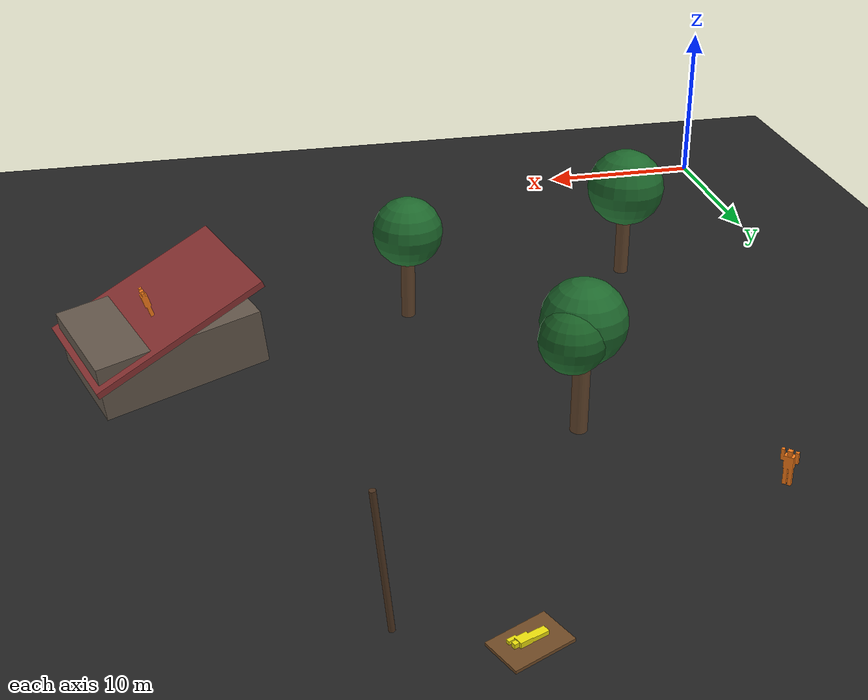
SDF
<sdf version="1.9">
 <world name="disaster_night_world">
  <model name="ground_plane">
   <static>true</static>
   <pose>100 50 0 0 0 0</pose>
   <link name="ground_link">
    <collision name="ground_collision">
     <geometry><plane><normal>0 0 1</normal><size>240 140</size></plane></geometry>
    </collision>
    <visual name="ground_visual">
     <geometry><plane><normal>0 0 1</normal><size>240 140</size></plane></geometry>
     <material><ambient>0.1 0.1 0.1 1.0</ambient><diffuse>0.14 0.14 0.14 1.0</diffuse></material>
    </visual>
   </link>
  </model>
  <model name="flood_tree_1">
   <static>true</static>
   <pose>18 32 0 0 0 0.4</pose>
   <link name="trunk">
    <pose>0 0 3.2 0 0 0</pose>
    <collision name="col">
     <geometry><cylinder><radius>0.45</radius><length>6.4</length></cylinder></geometry>
    </collision>
    <visual name="v">
     <geometry><cylinder><radius>0.45</radius><length>6.4</length></cylinder></geometry>
     <material>
      <ambient>0.3 0.2 0.12 1.0</ambient>
      <diffuse>0.4 0.28 0.18 1.0</diffuse>
      <pbr>
       <metal>
        <albedo_map>materials/textures/bark_diffuse.png</albedo_map>
        <normal_map>materials/textures/bark_normal.png</normal_map>
        <roughness>0.8</roughness>
       </metal>
      </pbr>
     </material>
    </visual>
   </link>
   <link name="branch_1">
    <pose>0.8 0.4 4.5 0 0.65 0.5</pose>
    <visual name="v">
     <geometry><cylinder><radius>0.24</radius><length>2.4</length></cylinder></geometry>
     <material>
      <ambient>0.3 0.2 0.12 1.0</ambient>
      <diffuse>0.4 0.28 0.18 1.0</diffuse>
      <pbr>
       <metal>
        <albedo_map>materials/textures/bark_diffuse.png</albedo_map>
        <normal_map>materials/textures/bark_normal.png</normal_map>
        <roughness>0.8</roughness>
       </metal>
      </pbr>
     </material>
    </visual>
   </link>
   <link name="branch_2">
    <pose>-0.7 -0.5 4.8 0 -0.55 -0.6</pose>
    <visual name="v">
     <geometry><cylinder><radius>0.22</radius><length>2.2</length></cylinder></geometry>
     <material>
      <ambient>0.3 0.2 0.12 1.0</ambient>
      <diffuse>0.4 0.28 0.18 1.0</diffuse>
      <pbr>
       <metal>
        <albedo_map>materials/textures/bark_diffuse.png</albedo_map>
        <normal_map>materials/textures/bark_normal.png</normal_map>
        <roughness>0.8</roughness>
       </metal>
      </pbr>
     </material>
    </visual>
   </link>
   <link name="canopy_main">
    <pose>0 0 6.2 0 0 0</pose>
    <visual name="v">
     <geometry><sphere><radius>2.2</radius></sphere></geometry>
     <material>
      <ambient>0.08 0.28 0.12 1.0</ambient>
      <diffuse>0.12 0.42 0.18 1.0</diffuse>
      <pbr>
       <metal>
        <albedo_map>materials/textures/leaves_diffuse.png</albedo_map>
        <normal_map>materials/textures/leaves_normal.png</normal_map>
        <roughness>0.6</roughness>
       </metal>
      </pbr>
     </material>
    </visual>
   </link>
   <link name="canopy_sub_1">
    <pose>1.2 0.6 5.8 0 0 0</pose>
    <visual name="v">
     <geometry><sphere><radius>1.7</radius></sphere></geometry>
     <material>
      <ambient>0.06 0.24 0.10 1.0</ambient>
      <diffuse>0.10 0.38 0.15 1.0</diffuse>
      <pbr>
       <metal>
        <albedo_map>materials/textures/leaves_diffuse.png</albedo_map>
        <normal_map>materials/textures/leaves_normal.png</normal_map>
        <roughness>0.6</roughness>
       </metal>
      </pbr>
     </material>
    </visual>
   </link>
   <link name="canopy_sub_2">
    <pose>-1.1 -0.7 6.0 0 0 0</pose>
    <visual name="v">
     <geometry><sphere><radius>1.6</radius></sphere></geometry>
     <material>
      <ambient>0.07 0.26 0.11 1.0</ambient>
      <diffuse>0.11 0.40 0.16 1.0</diffuse>
      <pbr>
       <metal>
        <albedo_map>materials/textures/leaves_diffuse.png</albedo_map>
        <normal_map>materials/textures/leaves_normal.png</normal_map>
        <roughness>0.6</roughness>
       </metal>
      </pbr>
     </material>
    </visual>
   </link>
  </model>
  <model name="flood_tree_7">
   <static>true</static>
   <pose>10 15 0 0 0 0.3</pose>
   <link name="t">
    <pose>0 0 3.2 0 0 0</pose>
    <visual name="v">
     <geometry><cylinder><radius>0.42</radius><length>6.4</length></cylinder></geometry>
     <material>
      <ambient>0.3 0.2 0.12 1.0</ambient>
      <diffuse>0.4 0.28 0.18 1.0</diffuse>
      <pbr>
       <metal>
        <albedo_map>materials/textures/bark_diffuse.png</albedo_map>
        <normal_map>materials/textures/bark_normal.png</normal_map>
        <roughness>0.8</roughness>
       </metal>
      </pbr>
     </material>
    </visual>
   </link>
   <link name="c1">
    <pose>0 0 5.6 0 0 0</pose>
    <visual name="v">
     <geometry><sphere><radius>2.3</radius></sphere></geometry>
     <material>
      <ambient>0.08 0.28 0.12 1.0</ambient>
      <diffuse>0.12 0.42 0.18 1.0</diffuse>
      <pbr>
       <metal>
        <albedo_map>materials/textures/leaves_diffuse.png</albedo_map>
        <normal_map>materials/textures/leaves_normal.png</normal_map>
        <roughness>0.6</roughness>
       </metal>
      </pbr>
     </material>
    </visual>
   </link>
  </model>
  <model name="flood_tree_9">
   <static>true</static>
   <pose>24 18 0 0 0 0.8</pose>
   <link name="t">
    <pose>0 0 3.0 0 0 0</pose>
    <visual name="v">
     <geometry><cylinder><radius>0.4</radius><length>6.0</length></cylinder></geometry>
     <material>
      <ambient>0.3 0.2 0.12 1.0</ambient>
      <diffuse>0.4 0.28 0.18 1.0</diffuse>
      <pbr>
       <metal>
        <albedo_map>materials/textures/bark_diffuse.png</albedo_map>
        <normal_map>materials/textures/bark_normal.png</normal_map>
        <roughness>0.8</roughness>
       </metal>
      </pbr>
     </material>
    </visual>
   </link>
   <link name="c1">
    <pose>0 0 5.3 0 0 0</pose>
    <visual name="v">
     <geometry><sphere><radius>2.0</radius></sphere></geometry>
     <material>
      <ambient>0.08 0.28 0.12 1.0</ambient>
      <diffuse>0.12 0.42 0.18 1.0</diffuse>
      <pbr>
       <metal>
        <albedo_map>materials/textures/leaves_diffuse.png</albedo_map>
        <normal_map>materials/textures/leaves_normal.png</normal_map>
        <roughness>0.6</roughness>
       </metal>
      </pbr>
     </material>
    </visual>
   </link>
  </model>
  <model name="submerged_house_1">
   <static>true</static>
   <pose>38 22 0.8 0 0.12 0.3</pose>
   <link name="walls">
    <pose>0 0 1.5 0 0 0</pose>
    <visual name="v">
     <geometry><box><size>9 7 3</size></box></geometry>
     <material><ambient>0.3 0.25 0.2 1.0</ambient><diffuse>0.4 0.35 0.3 1.0</diffuse></material>
    </visual>
   </link>
   <link name="roof">
    <pose>0 0 3.3 0 0.3 0</pose>
    <collision name="col"><geometry><box><size>10 8 0.35</size></box></geometry></collision>
    <visual name="v">
     <geometry><box><size>10 8 0.35</size></box></geometry>
     <material><ambient>0.45 0.15 0.15 1.0</ambient><diffuse>0.55 0.2 0.2 1.0</diffuse></material>
    </visual>
   </link>
  </model>
  <model name="floating_pallet_1">
   <static>true</static>
   <pose>25 48 1.02 0 0.05 0.4</pose>
   <link name="r">
    <visual name="v">
     <geometry><box><size>3.0 2.0 0.15</size></box></geometry>
     <material><ambient>0.35 0.22 0.1 1.0</ambient><diffuse>0.45 0.3 0.15 1.0</diffuse></material>
    </visual>
   </link>
  </model>
  <model name="submerged_utility_pole_1">
   <static>true</static>
   <pose>30 45 0 0 0.1 0</pose>
   <link name="pole">
    <pose>0 0 3.5 0 0 0</pose>
    <visual name="v">
     <geometry><cylinder><radius>0.15</radius><length>7.0</length></cylinder></geometry>
     <material><ambient>0.25 0.18 0.1 1.0</ambient><diffuse>0.3 0.2 0.12 1.0</diffuse></material>
    </visual>
   </link>
  </model>
  <include>
   <uri>model://human_sitting_clinging</uri>
   <name>survivor_01_tree1</name>
   <pose>18.8 32.5 4.5 0 0 0.5</pose>
  </include>
  <include>
   <uri>model://human_standing_waving</uri>
   <name>survivor_06a_house1_roof</name>
   <pose>38.5 22.8 3.8 0 0.3 0.2</pose>
  </include>
  <include>
   <uri>model://human_sitting_clinging</uri>
   <name>survivor_06b_house1_ledge</name>
   <pose>37.2 21.5 3.5 0 0.2 -0.5</pose>
  </include>
  <include>
   <uri>model://human_prone_injured</uri>
   <name>survivor_09_floating_pallet</name>
   <pose>25.0 48.0 1.12 0 0 0.4</pose>
  </include>
  <include>
   <uri>model://human_standing_waving</uri>
   <name>survivor_10_lake_verge</name>
   <pose>10.5 40.0 1.05 0 0 0.8</pose>
  </include>
 </world>
</sdf>
